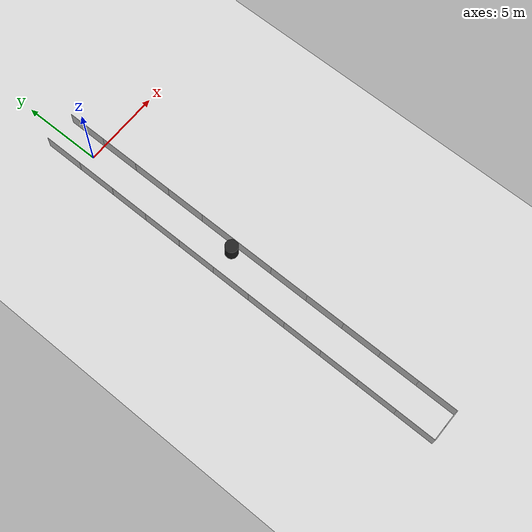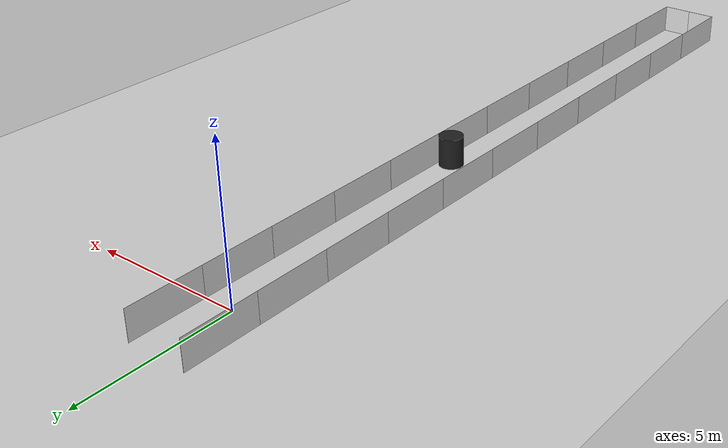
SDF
<sdf version="1.4">
 <world name="default">
  <include><uri>model://sun</uri></include>
  <include><uri>model://ground_plane</uri></include>
  <model name="obs11">
   <pose>-1 1.25 0.5 0 -0 0</pose>
   <link name="link">
    <inertial><mass>1.0</mass></inertial>
    <collision name="collision"><geometry><box><size>0.01 2.5 1</size></box></geometry></collision>
    <visual name="visual">
     <geometry><box><size>0.01 2.5 1</size></box></geometry>
     <material>
      <script><uri>file://media/materials/scripts/gazebo.material</uri><name>Gazebo/White</name></script>
     </material>
    </visual>
    <velocity_decay><linear>0</linear><angular>0</angular></velocity_decay>
   </link>
   <static>1</static>
  </model>
  <model name="obs12">
   <pose>1 1.25 0.5 0 -0 0</pose>
   <link name="link">
    <inertial><mass>1.0</mass></inertial>
    <collision name="collision"><geometry><box><size>0.01 2.5 1</size></box></geometry></collision>
    <visual name="visual">
     <geometry><box><size>0.01 2.5 1</size></box></geometry>
     <material>
      <script><uri>file://media/materials/scripts/gazebo.material</uri><name>Gazebo/White</name></script>
     </material>
    </visual>
    <velocity_decay><linear>0</linear><angular>0</angular></velocity_decay>
   </link>
   <static>1</static>
  </model>
  <model name="obs111">
   <pose>-1 -1.25 0.5 0 -0 0</pose>
   <link name="link">
    <inertial><mass>1.0</mass></inertial>
    <collision name="collision"><geometry><box><size>0.01 2.5 1</size></box></geometry></collision>
    <visual name="visual">
     <geometry><box><size>0.01 2.5 1</size></box></geometry>
     <material>
      <script><uri>file://media/materials/scripts/gazebo.material</uri><name>Gazebo/White</name></script>
     </material>
    </visual>
    <velocity_decay><linear>0</linear><angular>0</angular></velocity_decay>
   </link>
   <static>1</static>
  </model>
  <model name="obs112">
   <pose>1 -1.25 0.5 0 -0 0</pose>
   <link name="link">
    <inertial><mass>1.0</mass></inertial>
    <collision name="collision"><geometry><box><size>0.01 2.5 1</size></box></geometry></collision>
    <visual name="visual">
     <geometry><box><size>0.01 2.5 1</size></box></geometry>
     <material>
      <script><uri>file://media/materials/scripts/gazebo.material</uri><name>Gazebo/White</name></script>
     </material>
    </visual>
    <velocity_decay><linear>0</linear><angular>0</angular></velocity_decay>
   </link>
   <static>1</static>
  </model>
  <model name="obs121">
   <pose>-1 -3.75 0.5 0 -0 0</pose>
   <link name="link">
    <inertial><mass>1.0</mass></inertial>
    <collision name="collision"><geometry><box><size>0.01 2.5 1</size></box></geometry></collision>
    <visual name="visual">
     <geometry><box><size>0.01 2.5 1</size></box></geometry>
     <material>
      <script><uri>file://media/materials/scripts/gazebo.material</uri><name>Gazebo/White</name></script>
     </material>
    </visual>
    <velocity_decay><linear>0</linear><angular>0</angular></velocity_decay>
   </link>
   <static>1</static>
  </model>
  <model name="obs122">
   <pose>1 -3.75 0.5 0 -0 0</pose>
   <link name="link">
    <inertial><mass>1.0</mass></inertial>
    <collision name="collision"><geometry><box><size>0.01 2.5 1</size></box></geometry></collision>
    <visual name="visual">
     <geometry><box><size>0.01 2.5 1</size></box></geometry>
     <material>
      <script><uri>file://media/materials/scripts/gazebo.material</uri><name>Gazebo/White</name></script>
     </material>
    </visual>
    <velocity_decay><linear>0</linear><angular>0</angular></velocity_decay>
   </link>
   <static>1</static>
  </model>
  <model name="obs131">
   <pose>-1 -6.25 0.5 0 -0 0</pose>
   <link name="link">
    <inertial><mass>1.0</mass></inertial>
    <collision name="collision"><geometry><box><size>0.01 2.5 1</size></box></geometry></collision>
    <visual name="visual">
     <geometry><box><size>0.01 2.5 1</size></box></geometry>
     <material>
      <script><uri>file://media/materials/scripts/gazebo.material</uri><name>Gazebo/White</name></script>
     </material>
    </visual>
    <velocity_decay><linear>0</linear><angular>0</angular></velocity_decay>
   </link>
   <static>1</static>
  </model>
  <model name="obs132">
   <pose>1 -6.25 0.5 0 -0 0</pose>
   <link name="link">
    <inertial><mass>1.0</mass></inertial>
    <collision name="collision"><geometry><box><size>0.01 2.5 1</size></box></geometry></collision>
    <visual name="visual">
     <geometry><box><size>0.01 2.5 1</size></box></geometry>
     <material>
      <script><uri>file://media/materials/scripts/gazebo.material</uri><name>Gazebo/White</name></script>
     </material>
    </visual>
    <velocity_decay><linear>0</linear><angular>0</angular></velocity_decay>
   </link>
   <static>1</static>
  </model>
  <model name="obs141">
   <pose>-1 -8.75 0.5 0 -0 0</pose>
   <link name="link">
    <inertial><mass>1.0</mass></inertial>
    <collision name="collision"><geometry><box><size>0.01 2.5 1</size></box></geometry></collision>
    <visual name="visual">
     <geometry><box><size>0.01 2.5 1</size></box></geometry>
     <material>
      <script><uri>file://media/materials/scripts/gazebo.material</uri><name>Gazebo/White</name></script>
     </material>
    </visual>
    <velocity_decay><linear>0</linear><angular>0</angular></velocity_decay>
   </link>
   <static>1</static>
  </model>
  <model name="obs142">
   <pose>1 -8.75 0.5 0 -0 0</pose>
   <link name="link">
    <inertial><mass>1.0</mass></inertial>
    <collision name="collision"><geometry><box><size>0.01 2.5 1</size></box></geometry></collision>
    <visual name="visual">
     <geometry><box><size>0.01 2.5 1</size></box></geometry>
     <material>
      <script><uri>file://media/materials/scripts/gazebo.material</uri><name>Gazebo/White</name></script>
     </material>
    </visual>
    <velocity_decay><linear>0</linear><angular>0</angular></velocity_decay>
   </link>
   <static>1</static>
  </model>
  <model name="obs151">
   <pose>-1 -11.25 0.5 0 -0 0</pose>
   <link name="link">
    <inertial><mass>1.0</mass></inertial>
    <collision name="collision"><geometry><box><size>0.01 2.5 1</size></box></geometry></collision>
    <visual name="visual">
     <geometry><box><size>0.01 2.5 1</size></box></geometry>
     <material>
      <script><uri>file://media/materials/scripts/gazebo.material</uri><name>Gazebo/White</name></script>
     </material>
    </visual>
    <velocity_decay><linear>0</linear><angular>0</angular></velocity_decay>
   </link>
   <static>1</static>
  </model>
  <model name="obs152">
   <pose>1 -11.25 0.5 0 -0 0</pose>
   <link name="link">
    <inertial><mass>1.0</mass></inertial>
    <collision name="collision"><geometry><box><size>0.01 2.5 1</size></box></geometry></collision>
    <visual name="visual">
     <geometry><box><size>0.01 2.5 1</size></box></geometry>
     <material>
      <script><uri>file://media/materials/scripts/gazebo.material</uri><name>Gazebo/White</name></script>
     </material>
    </visual>
    <velocity_decay><linear>0</linear><angular>0</angular></velocity_decay>
   </link>
   <static>1</static>
  </model>
  <model name="obs161">
   <pose>-1 -13.75 0.5 0 -0 0</pose>
   <link name="link">
    <inertial><mass>1.0</mass></inertial>
    <collision name="collision"><geometry><box><size>0.01 2.5 1</size></box></geometry></collision>
    <visual name="visual">
     <geometry><box><size>0.01 2.5 1</size></box></geometry>
     <material>
      <script><uri>file://media/materials/scripts/gazebo.material</uri><name>Gazebo/White</name></script>
     </material>
    </visual>
    <velocity_decay><linear>0</linear><angular>0</angular></velocity_decay>
   </link>
   <static>1</static>
  </model>
  <model name="obs162">
   <pose>1 -13.75 0.5 0 -0 0</pose>
   <link name="link">
    <inertial><mass>1.0</mass></inertial>
    <collision name="collision"><geometry><box><size>0.01 2.5 1</size></box></geometry></collision>
    <visual name="visual">
     <geometry><box><size>0.01 2.5 1</size></box></geometry>
     <material>
      <script><uri>file://media/materials/scripts/gazebo.material</uri><name>Gazebo/White</name></script>
     </material>
    </visual>
    <velocity_decay><linear>0</linear><angular>0</angular></velocity_decay>
   </link>
   <static>1</static>
  </model>
  <model name="obs171">
   <pose>-1 -16.25 0.5 0 -0 0</pose>
   <link name="link">
    <inertial><mass>1.0</mass></inertial>
    <collision name="collision"><geometry><box><size>0.01 2.5 1</size></box></geometry></collision>
    <visual name="visual">
     <geometry><box><size>0.01 2.5 1</size></box></geometry>
     <material>
      <script><uri>file://media/materials/scripts/gazebo.material</uri><name>Gazebo/White</name></script>
     </material>
    </visual>
    <velocity_decay><linear>0</linear><angular>0</angular></velocity_decay>
   </link>
   <static>1</static>
  </model>
  <model name="obs172">
   <pose>1 -16.25 0.5 0 -0 0</pose>
   <link name="link">
    <inertial><mass>1.0</mass></inertial>
    <collision name="collision"><geometry><box><size>0.01 2.5 1</size></box></geometry></collision>
    <visual name="visual">
     <geometry><box><size>0.01 2.5 1</size></box></geometry>
     <material>
      <script><uri>file://media/materials/scripts/gazebo.material</uri><name>Gazebo/White</name></script>
     </material>
    </visual>
    <velocity_decay><linear>0</linear><angular>0</angular></velocity_decay>
   </link>
   <static>1</static>
  </model>
  <model name="obs181">
   <pose>-1 -18.75 0.5 0 -0 0</pose>
   <link name="link">
    <inertial><mass>1.0</mass></inertial>
    <collision name="collision"><geometry><box><size>0.01 2.5 1</size></box></geometry></collision>
    <visual name="visual">
     <geometry><box><size>0.01 2.5 1</size></box></geometry>
     <material>
      <script><uri>file://media/materials/scripts/gazebo.material</uri><name>Gazebo/White</name></script>
     </material>
    </visual>
    <velocity_decay><linear>0</linear><angular>0</angular></velocity_decay>
   </link>
   <static>1</static>
  </model>
  <model name="obs182">
   <pose>1 -18.75 0.5 0 -0 0</pose>
   <link name="link">
    <inertial><mass>1.0</mass></inertial>
    <collision name="collision"><geometry><box><size>0.01 2.5 1</size></box></geometry></collision>
    <visual name="visual">
     <geometry><box><size>0.01 2.5 1</size></box></geometry>
     <material>
      <script><uri>file://media/materials/scripts/gazebo.material</uri><name>Gazebo/White</name></script>
     </material>
    </visual>
    <velocity_decay><linear>0</linear><angular>0</angular></velocity_decay>
   </link>
   <static>1</static>
  </model>
  <model name="obs191">
   <pose>-1 -21.25 0.5 0 -0 0</pose>
   <link name="link">
    <inertial><mass>1.0</mass></inertial>
    <collision name="collision"><geometry><box><size>0.01 2.5 1</size></box></geometry></collision>
    <visual name="visual">
     <geometry><box><size>0.01 2.5 1</size></box></geometry>
     <material>
      <script><uri>file://media/materials/scripts/gazebo.material</uri><name>Gazebo/White</name></script>
     </material>
    </visual>
    <velocity_decay><linear>0</linear><angular>0</angular></velocity_decay>
   </link>
   <static>1</static>
  </model>
  <model name="obs192">
   <pose>1 -21.25 0.5 0 -0 0</pose>
   <link name="link">
    <inertial><mass>1.0</mass></inertial>
    <collision name="collision"><geometry><box><size>0.01 2.5 1</size></box></geometry></collision>
    <visual name="visual">
     <geometry><box><size>0.01 2.5 1</size></box></geometry>
     <material>
      <script><uri>file://media/materials/scripts/gazebo.material</uri><name>Gazebo/White</name></script>
     </material>
    </visual>
    <velocity_decay><linear>0</linear><angular>0</angular></velocity_decay>
   </link>
   <static>1</static>
  </model>
  <model name="obs201">
   <pose>-1 -23.75 0.5 0 -0 0</pose>
   <link name="link">
    <inertial><mass>1.0</mass></inertial>
    <collision name="collision"><geometry><box><size>0.01 2.5 1</size></box></geometry></collision>
    <visual name="visual">
     <geometry><box><size>0.01 2.5 1</size></box></geometry>
     <material>
      <script><uri>file://media/materials/scripts/gazebo.material</uri><name>Gazebo/White</name></script>
     </material>
    </visual>
    <velocity_decay><linear>0</linear><angular>0</angular></velocity_decay>
   </link>
   <static>1</static>
  </model>
  <model name="obs202">
   <pose>1 -23.75 0.5 0 -0 0</pose>
   <link name="link">
    <inertial><mass>1.0</mass></inertial>
    <collision name="collision"><geometry><box><size>0.01 2.5 1</size></box></geometry></collision>
    <visual name="visual">
     <geometry><box><size>0.01 2.5 1</size></box></geometry>
     <material>
      <script><uri>file://media/materials/scripts/gazebo.material</uri><name>Gazebo/White</name></script>
     </material>
    </visual>
    <velocity_decay><linear>0</linear><angular>0</angular></velocity_decay>
   </link>
   <static>1</static>
  </model>
  <model name="obs211">
   <pose>0.5 -25.0 0.5 0 -0 0</pose>
   <link name="link">
    <inertial><mass>1.0</mass></inertial>
    <collision name="collision"><geometry><box><size>1.0 0.01 1</size></box></geometry></collision>
    <visual name="visual">
     <geometry><box><size>1.0 0.01 1</size></box></geometry>
     <material>
      <script><uri>file://media/materials/scripts/gazebo.material</uri><name>Gazebo/White</name></script>
     </material>
    </visual>
    <velocity_decay><linear>0</linear><angular>0</angular></velocity_decay>
   </link>
   <static>1</static>
  </model>
  <model name="obs221">
   <pose>-0.5 -25.0 0.5 0 -0 0</pose>
   <link name="link">
    <inertial><mass>1.0</mass></inertial>
    <collision name="collision"><geometry><box><size>1.0 0.01 1</size></box></geometry></collision>
    <visual name="visual">
     <geometry><box><size>1.0 0.01 1</size></box></geometry>
     <material>
      <script><uri>file://media/materials/scripts/gazebo.material</uri><name>Gazebo/White</name></script>
     </material>
    </visual>
    <velocity_decay><linear>0</linear><angular>0</angular></velocity_decay>
   </link>
   <static>1</static>
  </model>
  <model name="obs4">
   <pose>0.60 -10 0.5 0 -0 0</pose>
   <link name="link">
    <inertial><mass>1.0</mass></inertial>
    <collision name="collision">
     <geometry><cylinder><radius>0.40</radius><length>1.0</length></cylinder></geometry>
    </collision>
    <visual name="visual">
     <geometry><cylinder><radius>0.40</radius><length>1.0</length></cylinder></geometry>
     <material>
      <script><uri>file://media/materials/scripts/gazebo.material</uri><name>Gazebo/Black</name></script>
     </material>
    </visual>
    <velocity_decay><linear>0</linear><angular>0</angular></velocity_decay>
   </link>
   <static>0</static>
  </model>
 </world>
</sdf>
